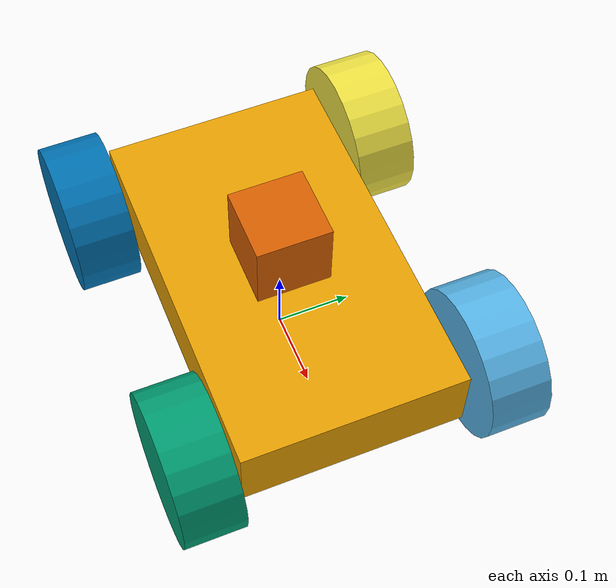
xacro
<?xml version="1.0"?>
<robot name="skid_steer" xmlns:xacro="http://www.ros.org/wiki/xacro">

  <xacro:property name="pi" value="3.14"/>
  <xacro:property name="chassis_length" value="0.5"/>
  <xacro:property name="chassis_width" value="0.3"/>
  <xacro:property name="chassis_height" value="0.1"/>
  <xacro:property name="wheel_radius" value="0.1"/>
  <xacro:property name="wheel_width" value="0.08"/>
  <xacro:property name="wheel_roll_angle" value="${pi/2}"/>

  <!-- Base Link (Chassis) -->
  <link name="base_link">
    <visual>
      <origin xyz="0 0 0.1" rpy="0 0 0"/>
      <geometry>
        <box size="0.5 0.3 0.1"/>
      </geometry>
    </visual>
    <collision>
      <origin xyz="0 0 0.1" rpy="0 0 0"/>
      <geometry>
        <box size="0.5 0.3 0.1"/>
      </geometry>
    </collision>
    <inertial>
      <origin xyz="0 0 0.1" rpy="0 0 0"/>
      <mass value="5.0"/>
      <inertia ixx="0.083" ixy="0" ixz="0" iyy="0.083" iyz="0" izz="0.083"/>
    </inertial>
  </link>

  <link name="front_left_wheel">
    <visual>
      <origin xyz="0 0 0" rpy="${wheel_roll_angle} 0 0"/>
      <geometry>
        <cylinder radius="0.1" length="0.08"/>
      </geometry>
    </visual>
    <collision>
      <origin xyz="0 0 0" rpy="${wheel_roll_angle} 0 0"/>
      <geometry>
        <cylinder radius="0.1" length="0.08"/>
      </geometry>
      <friction>
        <ode>
          <mu>10.0</mu>
          <mu2>10.0</mu2>
          <slip1>0.0</slip1>
          <slip2>0.0</slip2>
        </ode>
      </friction>
    </collision>
    <inertial>
      <origin xyz="0 0 0" rpy="${wheel_roll_angle} 0 0"/>
      <mass value="1.0"/>
      <inertia ixx="0.001" ixy="0" ixz="0" iyy="0.001" iyz="0" izz="0.001"/>
    </inertial>
  </link>

  <link name="front_right_wheel">
    <visual>
      <origin xyz="0 0 0" rpy="${wheel_roll_angle} 0 0"/>
      <geometry>
        <cylinder radius="0.1" length="0.08"/>
      </geometry>
    </visual>
    <collision>
      <origin xyz="0 0 0" rpy="${wheel_roll_angle} 0 0"/>
      <geometry>
        <cylinder radius="0.1" length="0.08"/>
      </geometry>
      <friction>
        <ode>
          <mu>10.0</mu>
          <mu2>10.0</mu2>
          <slip1>0.0</slip1>
          <slip2>0.0</slip2>
        </ode>
      </friction>
    </collision>
    <inertial>
      <origin xyz="0 0 0" rpy="${wheel_roll_angle} 0 0"/>
      <mass value="1.0"/>
      <inertia ixx="0.001" ixy="0" ixz="0" iyy="0.001" iyz="0" izz="0.001"/>
    </inertial>
  </link>

  <link name="rear_left_wheel">
    <visual>
      <origin xyz="0 0 0" rpy="${wheel_roll_angle} 0 0"/>
      <geometry>
        <cylinder radius="0.1" length="0.08"/>
      </geometry>
    </visual>
    <collision>
      <origin xyz="0 0 0" rpy="${wheel_roll_angle} 0 0"/>
      <geometry>
        <cylinder radius="0.1" length="0.08"/>
      </geometry>
      <friction>
        <ode>
          <mu>10.0</mu>
          <mu2>10.0</mu2>
          <slip1>0.0</slip1>
          <slip2>0.0</slip2>
        </ode>
      </friction>
    </collision>
    <inertial>
      <origin xyz="0 0 0" rpy="${wheel_roll_angle} 0 0"/>
      <mass value="1.0"/>
      <inertia ixx="0.001" ixy="0" ixz="0" iyy="0.001" iyz="0" izz="0.001"/>
    </inertial>
  </link>

  <link name="rear_right_wheel">
    <visual>
      <origin xyz="0 0 0" rpy="${wheel_roll_angle} 0 0"/>
      <geometry>
        <cylinder radius="0.1" length="0.08"/>
      </geometry>
    </visual>
    <collision>
      <origin xyz="0 0 0" rpy="${wheel_roll_angle} 0 0"/>
      <geometry>
        <cylinder radius="0.1" length="0.08"/>
      </geometry>
      <friction>
        <ode>
          <mu>10.0</mu>
          <mu2>10.0</mu2>
          <slip1>0.0</slip1>
          <slip2>0.0</slip2>
        </ode>
      </friction>
    </collision>
    <inertial>
      <origin xyz="0 0 0" rpy="${wheel_roll_angle} 0 0"/>
      <mass value="1.0"/>
      <inertia ixx="0.001" ixy="0" ixz="0" iyy="0.001" iyz="0" izz="0.001"/>
    </inertial>
  </link>

  <joint name="front_left_wheel_joint" type="continuous">
    <parent link="base_link"/>
    <child link="front_left_wheel"/>
    <origin xyz="0.2 0.2 0.1" rpy="0 0 0"/>
    <axis xyz="0 1 0" rpy="0 0 0"/>
    <limit effort="100" velocity="100"/>
    <joint_properties damping="1.0" friction="1.0"/>
  </joint>

  <joint name="front_right_wheel_joint" type="continuous">
    <parent link="base_link"/>
    <child link="front_right_wheel"/>
    <origin xyz="0.2 -0.2 0.1" rpy="0 0 0"/>
    <axis xyz="0 1 0" rpy="0 0 0"/>
    <limit effort="100" velocity="100"/>
    <joint_properties damping="1.0" friction="1.0"/>
  </joint>

  <joint name="rear_left_wheel_joint" type="continuous">
    <parent link="base_link"/>
    <child link="rear_left_wheel"/>
    <origin xyz="-0.2 0.2 0.1" rpy="0 0 0"/>
    <axis xyz="0 1 0" rpy="0 0 0"/>
    <limit effort="100" velocity="100"/>
    <joint_properties damping="1.0" friction="1.0"/>
  </joint>

  <joint name="rear_right_wheel_joint" type="continuous">
    <parent link="base_link"/>
    <child link="rear_right_wheel"/>
    <origin xyz="-0.2 -0.2 0.1" rpy="0 0 0"/>
    <axis xyz="0 1 0" rpy="0 0 0"/>
    <limit effort="100" velocity="100"/>
    <joint_properties damping="1.0" friction="1.0"/>
  </joint>

    <link name="imu_link">
        <inertial>
            <origin xyz="0 0 0" />
            <mass value="0.01" />
            <inertia ixx="0.0001" ixy="0" ixz="0" iyy="0.0001" iyz="0" izz="0.0001" />
        </inertial>

        <visual>
            <origin xyz="0 0 0" />
            <geometry>
                <box size="0.1 0.1 0.1" />
            </geometry>
        </visual>
    </link>

    <joint name="imu_joint" type="fixed">
        <parent link="base_link" />
        <child link="imu_link" />
        <origin xyz="0 0 0.2" rpy="0 0 0" />
    </joint>

    <!-- IMU Sensor -->
    <gazebo reference="imu_link">
        <sensor name="my_imu" type="imu">
            <always_on>true</always_on>
            <plugin name="my_imu_plugin" filename="libgazebo_ros_imu_sensor.so">
                <topicName>/imu</topicName>
                <updateRateHZ>100</updateRateHZ>
                <frameName>imu_frame</frameName>
            </plugin>
        </sensor>
    </gazebo>

      <!-- Plugin do Gazebo para o sensor Hokuyo -->
    <gazebo reference="imu_link">
        <sensor type="ray" name="hokuyo_sensor">
            <pose>0 0 0 0 0 0</pose>
            <ray>
                <scan>
                    <horizontal>
                        <samples>640</samples>
                        <resolution>1</resolution>
                        <min_angle>-2.26889</min_angle>
                        <max_angle>2.268899</max_angle>
                    </horizontal>
                </scan>
                <range>
                    <min>0.08</min>
                    <max>10</max>
                    <resolution>0.01</resolution>
                </range>
                <noise>
                    <type>gaussian</type>
                    <mean>0.0</mean>
                    <stddev>0.01</stddev>
                </noise>
            </ray>
            <plugin name="gazebo_ros_laser" filename="libgazebo_ros_laser.so">
                <!-- Publicar a nuvem de pontos no tópico /hokuyo/points -->
                <topicName>/hokuyo/points</topicName>
                <frameName>hokuyo_link</frameName>
            </plugin>
            <always_on>1</always_on>
            <update_rate>30</update_rate>
            <visualize>true</visualize>
        </sensor>
    </gazebo>

  <!-- Plugin de controle de drive diferencial (skid-steer) -->
  <gazebo>
    <plugin name="skid_steer_controller" filename="libgazebo_ros_skid_steer_drive.so">
      <updateRate>100.0</updateRate>
      <robotNamespace>/</robotNamespace>
      <leftFrontJoint>front_left_wheel_joint</leftFrontJoint>
      <rightFrontJoint>front_right_wheel_joint</rightFrontJoint>
      <leftRearJoint>rear_left_wheel_joint</leftRearJoint>
      <rightRearJoint>rear_right_wheel_joint</rightRearJoint>
      <wheelSeparation>0.3</wheelSeparation>
      <wheelDiameter>0.2</wheelDiameter>
      <robotBaseFrame>base_link</robotBaseFrame>
      <torque>20</torque>
      <topicName>cmd_vel</topicName>
      <broadcastTF>false</broadcastTF>
    </plugin>
  </gazebo>

</robot>
